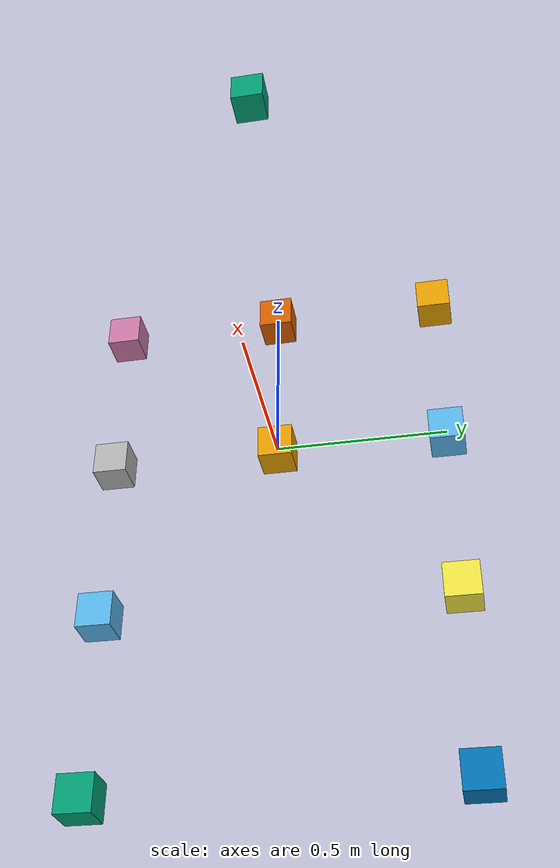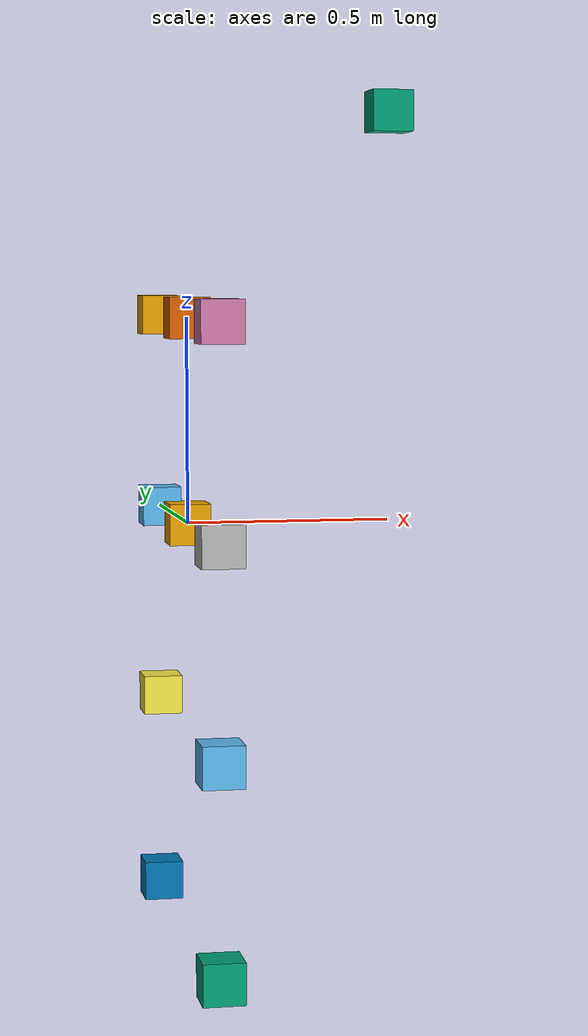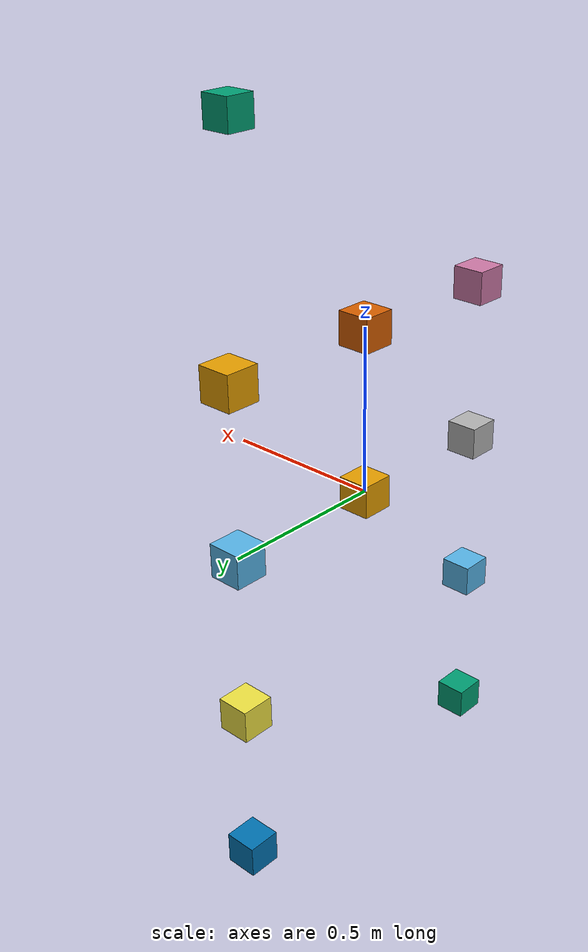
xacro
<?xml version="1.0"?>
<robot name="bonobo" xmlns:xacro="http://ros.org/wiki/xacro">
  <xacro:macro name="default_link" params="name">
    <link name="${name}">
      <visual>
        <geometry>
          <box size="0.1 0.1 0.1"/>
        </geometry>
      </visual>
      <collision>
        <geometry>
          <box size="0.1 0.1 0.1"/>
        </geometry>
      </collision>
      <inertial>
        <origin xyz="0 0 0" rpy="0 0 0" />
        <inertia ixx="0.1667e-02" ixy="0.0" ixz="0.0" iyy="0.1667e-02" iyz="0.0" izz="0.1667e-02" />
        <mass value="1.0"/>
      </inertial>
    </link>
  </xacro:macro>

  <xacro:macro name="default_joint" params="name type parent child *origin *axis">
    <joint name="${name}" type="${type}">
        <parent link="${parent}" />
        <child link="${child}" />
        <xacro:insert_block name="origin" />
        <xacro:insert_block name="axis" />
        <limit
          lower="${radians(-180)}"
          upper="${radians(180)}"
          effort="1.0"
          velocity="1.0"/>
        <dynamics damping="1.0e-6" friction="0.8"/>
    </joint>
  </xacro:macro>

  <xacro:default_link name="base_link"/>
  <xacro:default_joint
    name="r_leg_joint1"
    type="revolute"
    parent="base_link"
    child="r_leg_link1">
    <origin xyz="0 -0.5 -0.5" rpy="0 0 0" />
    <axis xyz="0 1 0"/>
  </xacro:default_joint>
  <xacro:default_link name="r_leg_link1"/>

  <xacro:default_joint
    name="r_leg_joint2"
    type="revolute"
    parent="r_leg_link1"
    child="r_leg_link2">
    <origin xyz="0 0 -0.5" rpy="0 0 0" />
    <axis xyz="0 0 1"/>
  </xacro:default_joint>
  <xacro:default_link name="r_leg_link2"/>

  <xacro:default_joint
    name="l_leg_joint1"
    type="revolute"
    parent="base_link"
    child="l_leg_link1">
    <origin xyz="0 0.5 -0.5" rpy="0 0 0" />
    <axis xyz="0 1 0"/>
  </xacro:default_joint>
  <xacro:default_link name="l_leg_link1"/>

  <xacro:default_joint
    name="l_leg_joint2"
    type="revolute"
    parent="l_leg_link1"
    child="l_leg_link2">
    <origin xyz="0 0 -0.5" rpy="0 0 0" />
    <axis xyz="0 0 1"/>
  </xacro:default_joint>
  <xacro:default_link name="l_leg_link2"/>

  <xacro:default_joint
    name="body_joint"
    type="fixed"
    parent="base_link"
    child="body_link">
    <origin xyz="0 0 0.5" rpy="0 0 0" />
    <axis xyz="0 0 0"/>
  </xacro:default_joint>
  <xacro:default_link name="body_link"/>

  <xacro:default_joint
    name="r_arm_joint1"
    type="revolute"
    parent="body_link"
    child="r_arm_link1">
    <origin xyz="0 -0.5 0" rpy="0 0 0" />
    <axis xyz="1 0 0"/>
  </xacro:default_joint>
  <xacro:default_link name="r_arm_link1"/>

  <xacro:default_joint
    name="r_arm_joint2"
    type="revolute"
    parent="r_arm_link1"
    child="r_arm_link2">
    <origin xyz="0 0 -0.5" rpy="0 0 0" />
    <axis xyz="0 1 0"/>
  </xacro:default_joint>
  <xacro:default_link name="r_arm_link2"/>

  <xacro:default_joint
    name="l_arm_joint1"
    type="revolute"
    parent="body_link"
    child="l_arm_link1">
    <origin xyz="0 0.5 0" rpy="0 0 0" />
    <axis xyz="1 0 0"/>
  </xacro:default_joint>
  <xacro:default_link name="l_arm_link1"/>

  <xacro:default_joint
    name="l_arm_joint2"
    type="revolute"
    parent="l_arm_link1"
    child="l_arm_link2">
    <origin xyz="0 0 -0.5" rpy="0 0 0" />
    <axis xyz="0 1 0"/>
  </xacro:default_joint>
  <xacro:default_link name="l_arm_link2"/>

  <xacro:default_joint
    name="head_joint1"
    type="revolute"
    parent="body_link"
    child="head_link">
    <origin xyz="0.5 0 0.5" rpy="0 0 0" />
    <axis xyz="0 0 1"/>
  </xacro:default_joint>
  <xacro:default_link name="head_link"/>
</robot>
